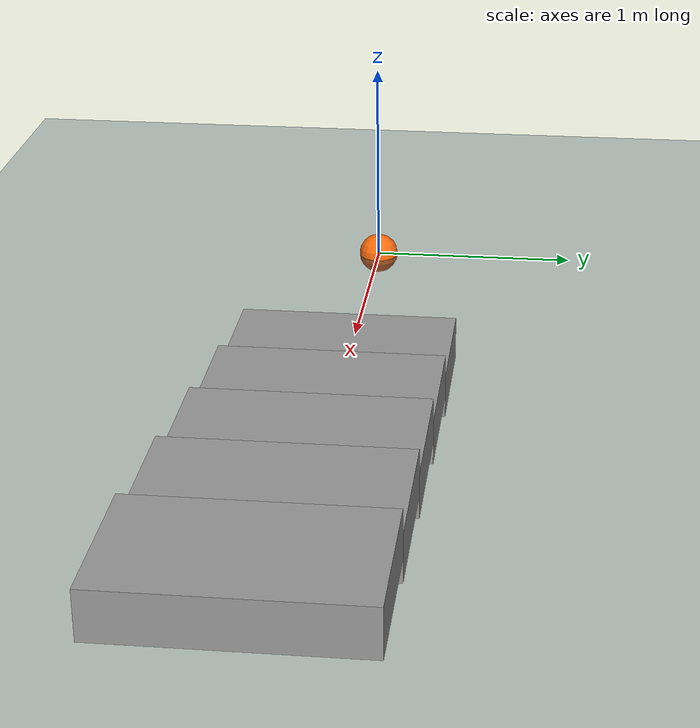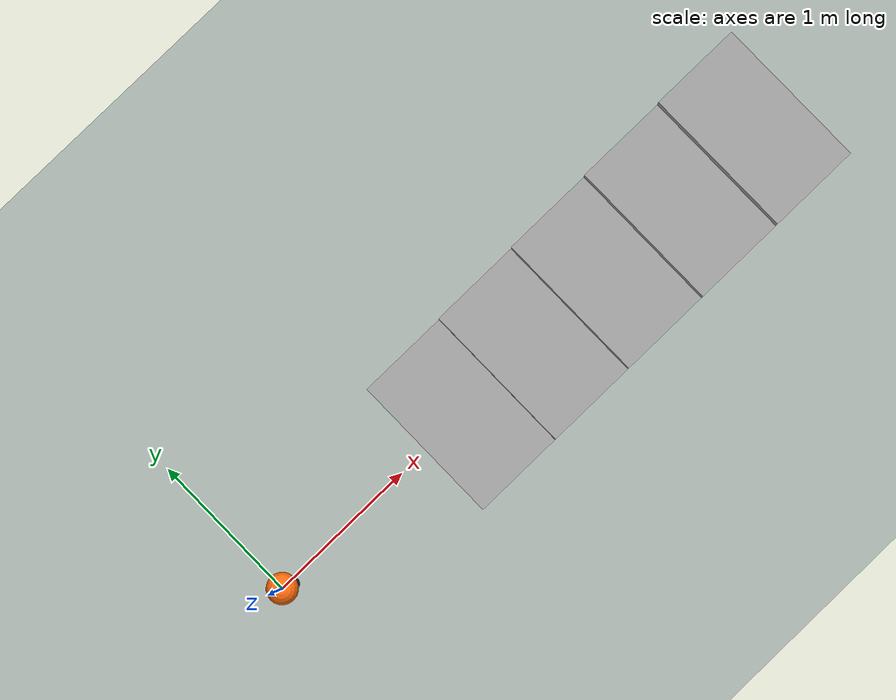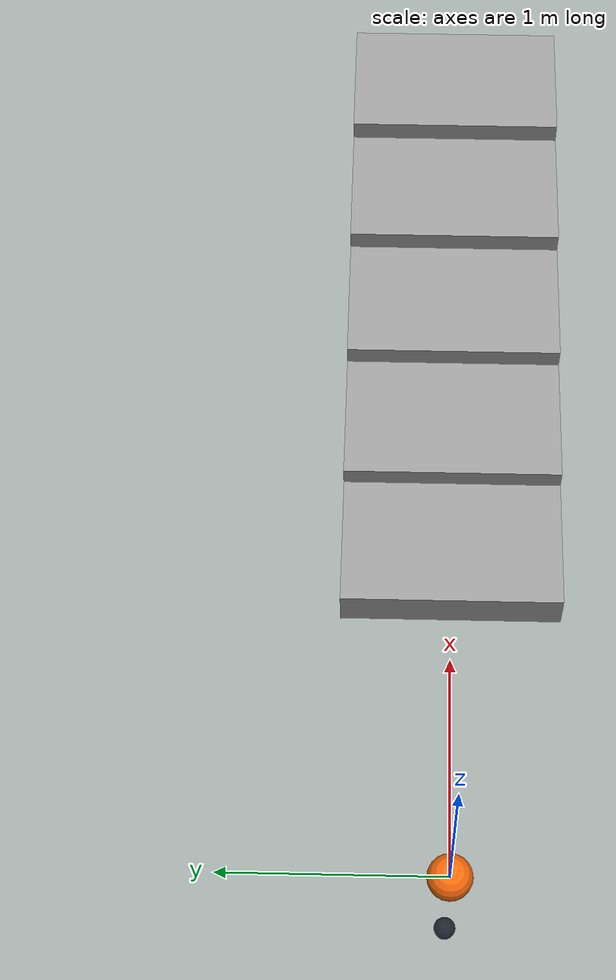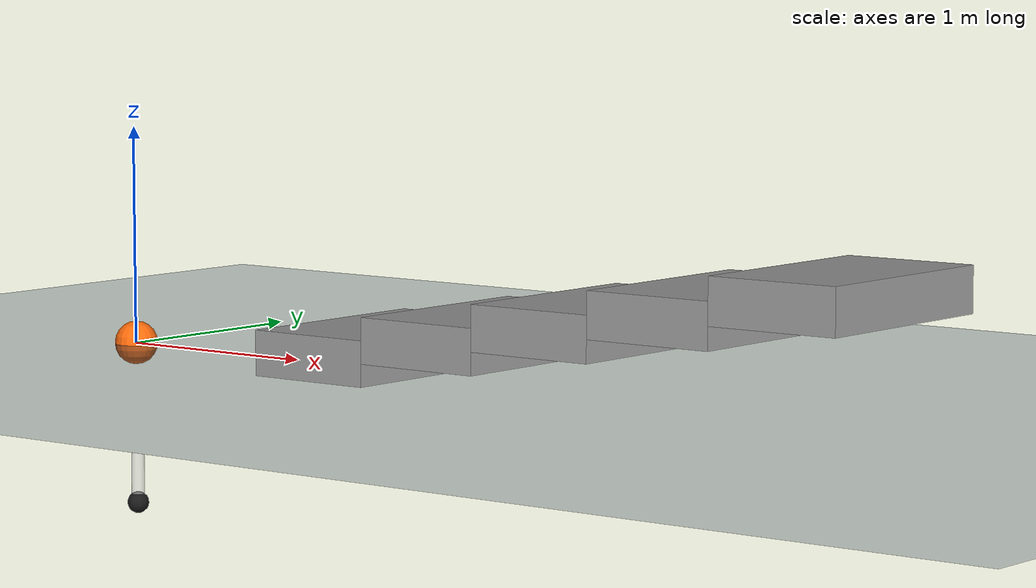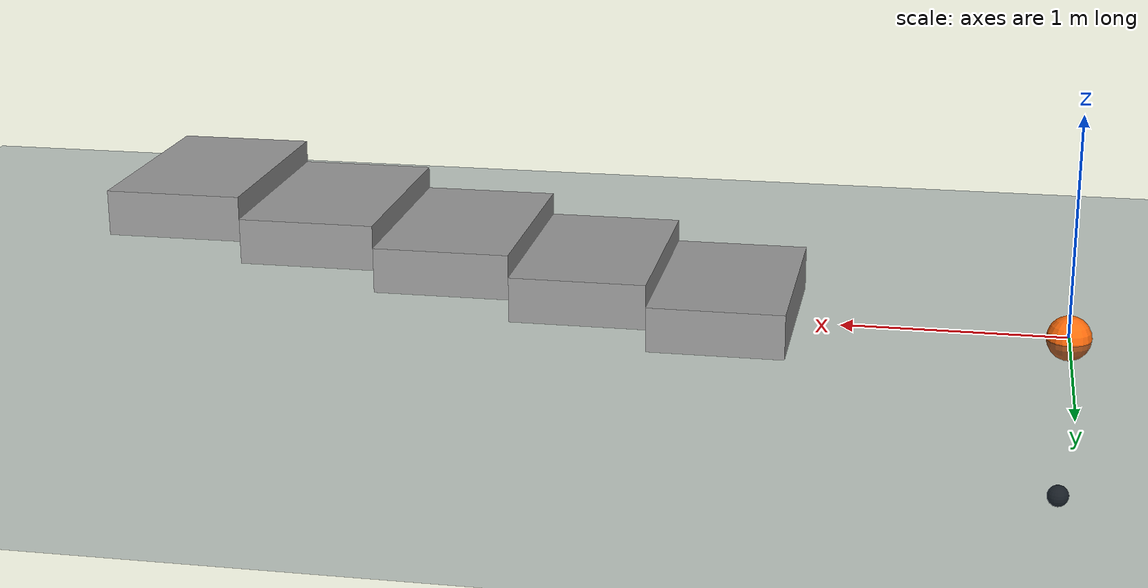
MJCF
<mujoco model="hopper_stairs">
    <include file="hopper.xml"/>

    <!-- Override or add elements here -->
    <worldbody>

        <!-- Stairs -->
        <body name="stairs" pos="1.5 0 0">
            <geom name="step1" type="box" size="0.3 0.5 0.1" pos="0 0 0.1" rgba="0.6 0.6 0.6 1" contype="1" conaffinity="1"/>
            <geom name="step2" type="box" size="0.3 0.5 0.1" pos="0.6 0 0.2" rgba="0.6 0.6 0.6 1" contype="1" conaffinity="1"/>
            <geom name="step3" type="box" size="0.3 0.5 0.1" pos="1.2 0 0.3" rgba="0.6 0.6 0.6 1" contype="1" conaffinity="1"/>
            <geom name="step4" type="box" size="0.3 0.5 0.1" pos="1.8 0 0.4" rgba="0.6 0.6 0.6 1" contype="1" conaffinity="1"/>
            <geom name="step5" type="box" size="0.3 0.5 0.1" pos="2.4 0 0.5" rgba="0.6 0.6 0.6 1" contype="1" conaffinity="1"/>
        </body>

    </worldbody>
</mujoco>

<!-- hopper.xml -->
<mujoco model="hopper">

    <!-- Simulation settings -->
    <option solver="Newton" integrator="implicitfast" timestep="0.01" iterations="10" ls_iterations="10" cone="elliptic"/>

    <!-- Inertia is computed from geometry -->
    <compiler inertiafromgeom="true" />

    <asset>
        <texture type="skybox" builtin="flat" rgb1="0 0 0" rgb2="0 0 0" width="512" height="512"/>
        <texture type="2d" name="groundplane" builtin="checker" mark="edge" rgb1="0.2 0.3 0.4" rgb2="0.1 0.2 0.3" markrgb="0.9 0.9 0.9" width="300" height="300"/>
        <material name="groundplane" texture="groundplane" texuniform="true" texrepeat="5 5" reflectance="0.2"/>
    </asset>

    <!-- Memory settings (default is 1000) -->
    <size nstack="3000" />

    <worldbody>

        <!-- Add light -->
        <light pos="-0.5 0.0 2.0" dir="0 0 -1" directional="true"/>

        <!-- Ground -->
        <geom name="ground" type="plane" size="0 0 0.005" material="groundplane" contype="1" conaffinity="6"/>

        <!-- Body -->
        <body name="torso" pos="0 0 0.0">
            <joint name="px"    type="slide" axis="1 0 0"/>
            <joint name="pz"    type="slide" axis="0 0 1"/>
            <joint name="theta" type="hinge" axis="0 1 0" limited="true" range="-360.0 360.0"/>
            <geom name="torso" type="sphere" size="0.1" rgba="1.0 0.424 0.047 1" contype="2" conaffinity="1"/>
            <site name="torso_site" type="sphere" size="0.101" rgba="0 0 0 0"/>
            <geom name="upper_leg" type="cylinder" fromto="0 0 0 0 0 -0.5" size="0.04" rgba="0.4 0.4 0.4 0.5"/>

            <!-- SpringLoaded Leg -->
            <body name="lower_leg" pos="0 0 -0.5">
                <joint name="leg" type="slide" axis="0 0 1" range="-0.25 0.25" springref="0.0" stiffness="2000.0" damping="50.0"/>
                <geom name="lower_leg" type="cylinder" fromto="0 0 0.25 0 0 -0.25" size="0.03" rgba="0.8 0.8 0.8 0.5"/>
                <geom name="foot" type="sphere" size="0.05" pos="0 0 -0.25" rgba="0.1 0.1 0.1 1" contype="4" conaffinity="1"/>
                <site name="foot_site" type="sphere" size="0.051" pos="0 0 -0.25" rgba="0 0 0 0"/>
            </body>
        </body>

    </worldbody>

    <!-- Sensors -->
    <sensor>
        <touch name="torso_touch" site="torso_site"/>
        <touch name="foot_touch"  site="foot_site"/>
    </sensor>

    <!-- Actuators -->
    <actuator>
        <motor name="body_motor" joint="theta" ctrllimited="true" ctrlrange="-20 20"/>
        <motor name="leg_motor" joint="leg" ctrllimited="true" ctrlrange="-300 300"/>
    </actuator>

    <!-- default configuration (when you press "Load key" button) -->
    <keyframe>
        <key name="default" qpos="0.0 1.25 0.0 0.0" qvel="0 0 0 0" />
    </keyframe>

</mujoco>
